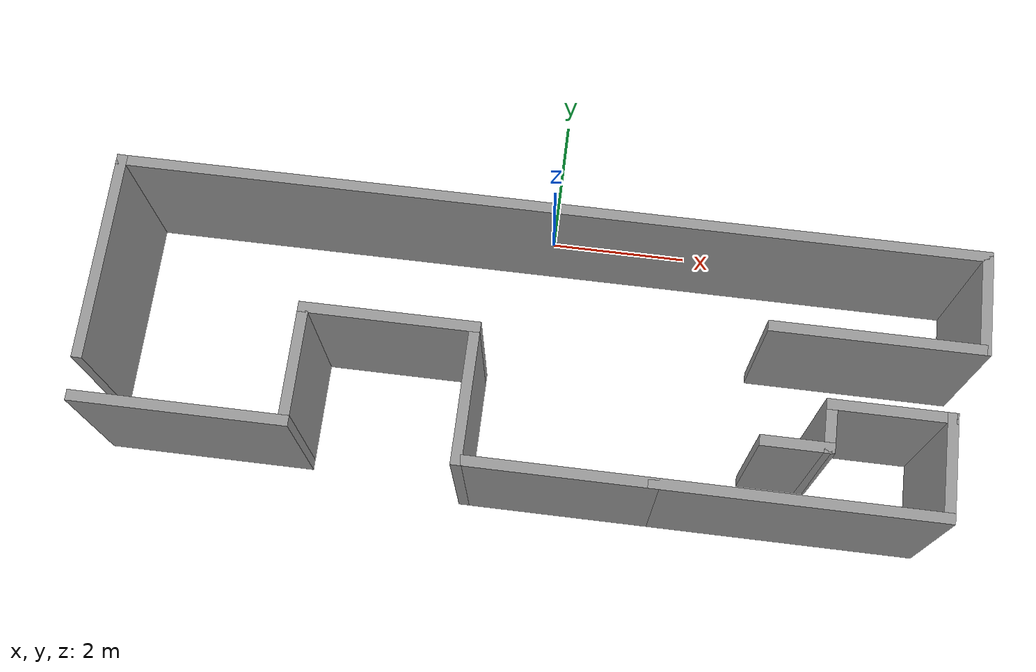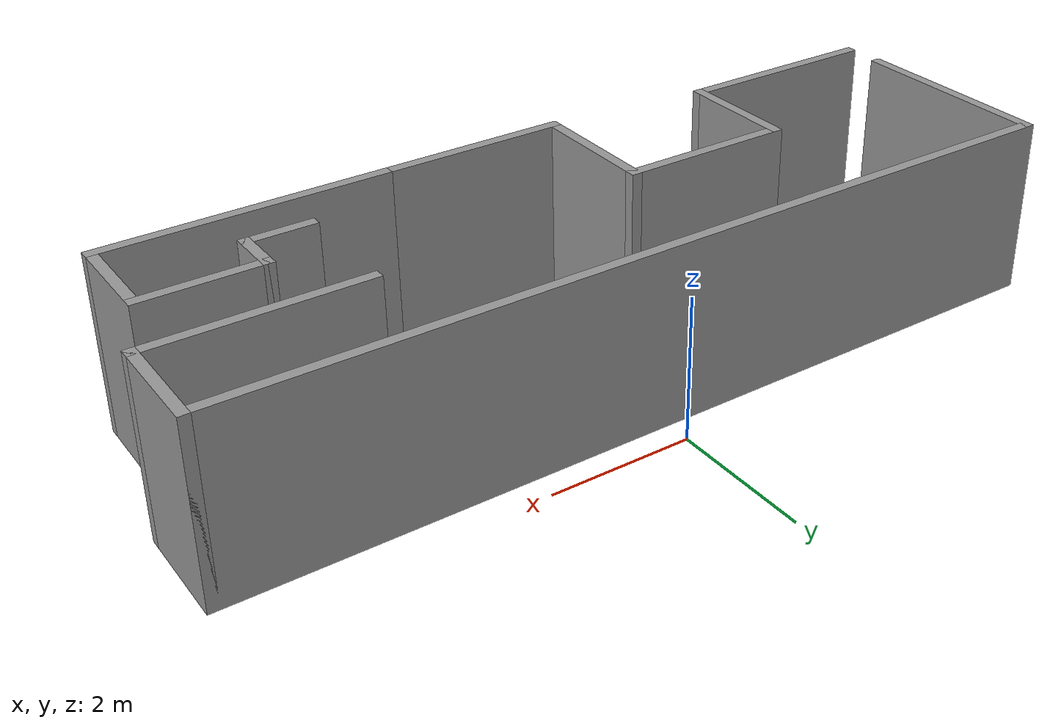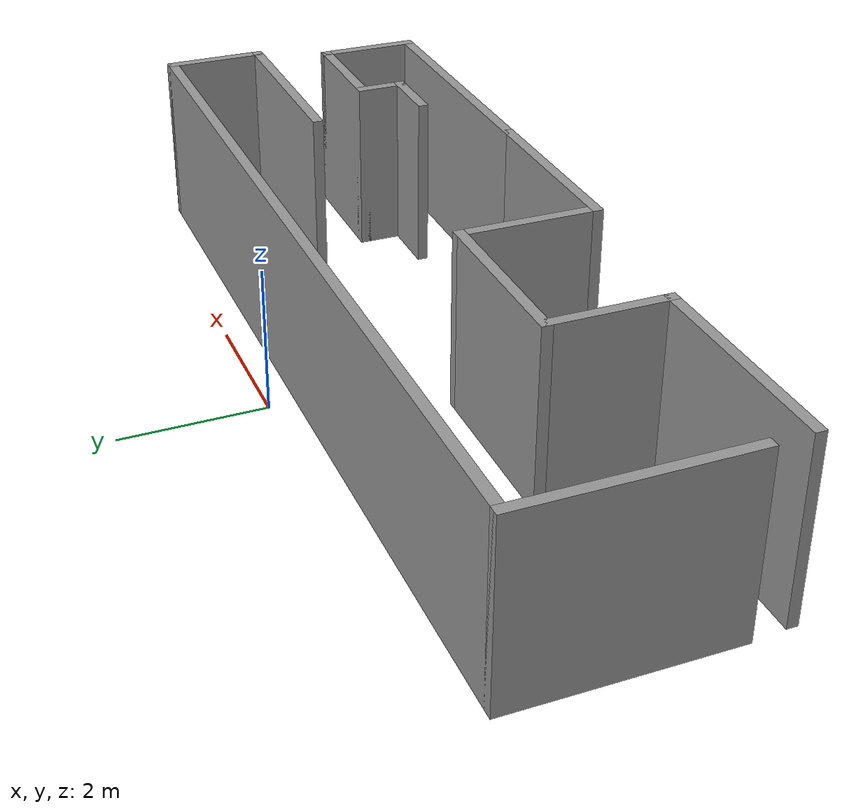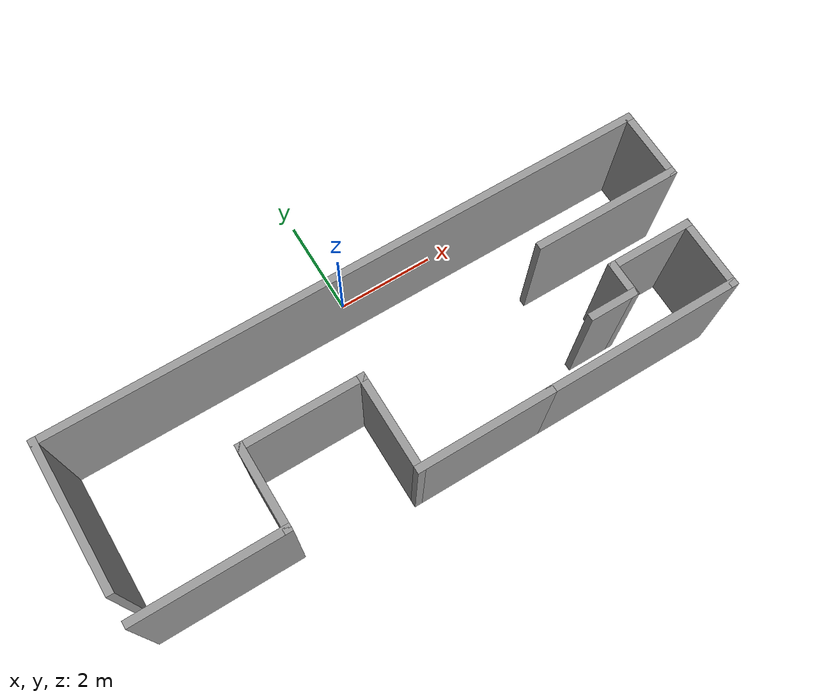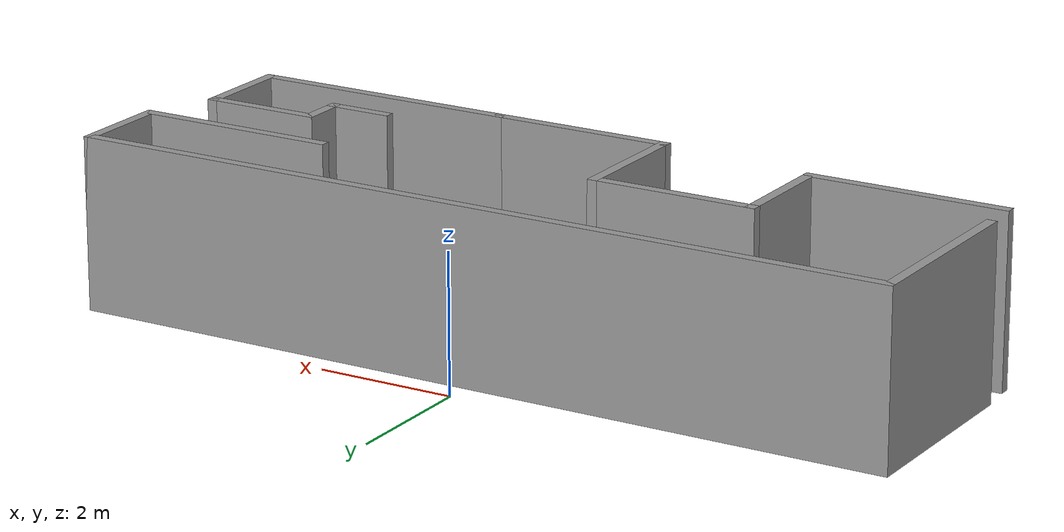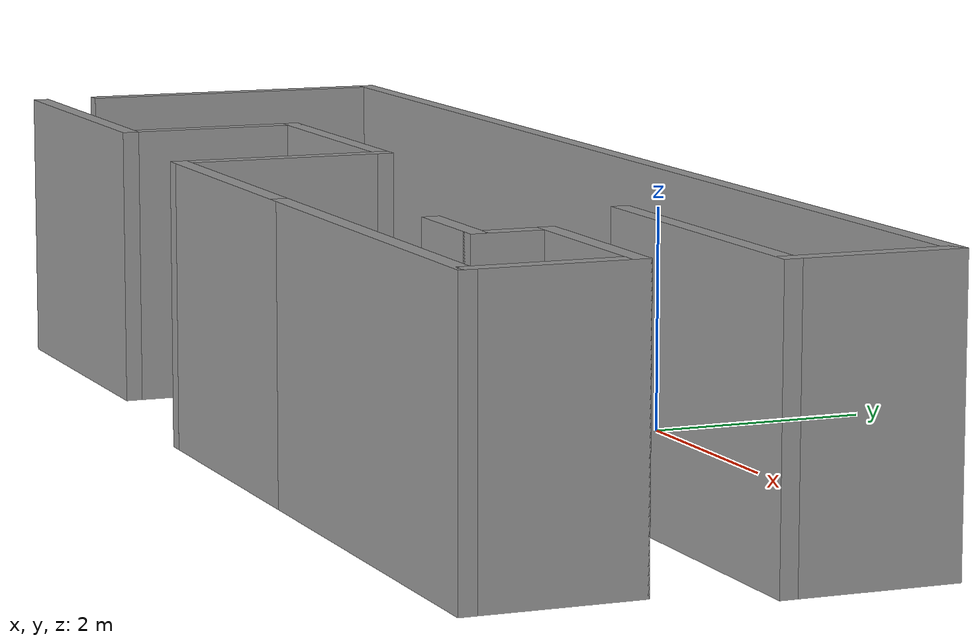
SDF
<sdf version='1.7'>
  <model name='model'>
    <pose>-0.03 -2.1075 0 0 -0 0</pose>
    <link name='Wall_0'>
      <collision name='Wall_0_Collision'>
        <geometry>
          <box>
            <size>3 0.15 2.5</size>
          </box>
        </geometry>
        <pose>0 0 1.25 0 -0 0</pose>
      </collision>
      <visual name='Wall_0_Visual'>
        <pose>0 0 1.25 0 -0 0</pose>
        <geometry>
          <box>
            <size>3 0.15 2.5</size>
          </box>
        </geometry>
        <material>
          <script>
            <uri>file://media/materials/scripts/gazebo.material</uri>
            <name>Gazebo/Grey</name>
          </script>
          <ambient>1 1 1 1</ambient>
        </material>
        <meta>
          <layer>0</layer>
        </meta>
      </visual>
      <pose>-6.05 0.2425 0 0 -0 1.5708</pose>
    </link>
    <link name='Wall_1'>
      <collision name='Wall_1_Collision'>
        <geometry>
          <box>
            <size>12.25 0.15 2.5</size>
          </box>
        </geometry>
        <pose>0 0 1.25 0 -0 0</pose>
      </collision>
      <visual name='Wall_1_Visual'>
        <pose>0 0 1.25 0 -0 0</pose>
        <geometry>
          <box>
            <size>12.25 0.15 2.5</size>
          </box>
        </geometry>
        <material>
          <script>
            <uri>file://media/materials/scripts/gazebo.material</uri>
            <name>Gazebo/Grey</name>
          </script>
          <ambient>1 1 1 1</ambient>
        </material>
        <meta>
          <layer>0</layer>
        </meta>
      </visual>
      <pose>-0 1.6675 0 0 -0 0</pose>
    </link>
    <link name='Wall_10'>
      <collision name='Wall_10_Collision'>
        <geometry>
          <box>
            <size>2.75 0.15 2.5</size>
          </box>
        </geometry>
        <pose>0 0 1.25 0 -0 0</pose>
      </collision>
      <visual name='Wall_10_Visual'>
        <pose>0 0 1.25 0 -0 0</pose>
        <geometry>
          <box>
            <size>2.75 0.15 2.5</size>
          </box>
        </geometry>
        <material>
          <script>
            <uri>file://media/materials/scripts/gazebo.material</uri>
            <name>Gazebo/Grey</name>
          </script>
          <ambient>1 1 1 1</ambient>
        </material>
        <meta>
          <layer>0</layer>
        </meta>
      </visual>
      <pose>0.5 -2.0325 0 0 -0 3.14159</pose>
    </link>
    <link name='Wall_11'>
      <collision name='Wall_11_Collision'>
        <geometry>
          <box>
            <size>2 0.15 2.5</size>
          </box>
        </geometry>
        <pose>0 0 1.25 0 -0 0</pose>
      </collision>
      <visual name='Wall_11_Visual'>
        <pose>0 0 1.25 0 -0 0</pose>
        <geometry>
          <box>
            <size>2 0.15 2.5</size>
          </box>
        </geometry>
        <material>
          <script>
            <uri>file://media/materials/scripts/gazebo.material</uri>
            <name>Gazebo/Grey</name>
          </script>
          <ambient>1 1 1 1</ambient>
        </material>
        <meta>
          <layer>0</layer>
        </meta>
      </visual>
      <pose>-0.8 -1.1075 0 0 -0 1.5708</pose>
    </link>
    <link name='Wall_12'>
      <collision name='Wall_12_Collision'>
        <geometry>
          <box>
            <size>2.5 0.15 2.5</size>
          </box>
        </geometry>
        <pose>0 0 1.25 0 -0 0</pose>
      </collision>
      <visual name='Wall_12_Visual'>
        <pose>0 0 1.25 0 -0 0</pose>
        <geometry>
          <box>
            <size>2.5 0.15 2.5</size>
          </box>
        </geometry>
        <material>
          <script>
            <uri>file://media/materials/scripts/gazebo.material</uri>
            <name>Gazebo/Grey</name>
          </script>
          <ambient>1 1 1 1</ambient>
        </material>
        <meta>
          <layer>0</layer>
        </meta>
      </visual>
      <pose>-1.975 -0.1825 0 0 -0 3.14159</pose>
    </link>
    <link name='Wall_13'>
      <collision name='Wall_13_Collision'>
        <geometry>
          <box>
            <size>1.75 0.15 2.5</size>
          </box>
        </geometry>
        <pose>0 0 1.25 0 -0 0</pose>
      </collision>
      <visual name='Wall_13_Visual'>
        <pose>0 0 1.25 0 -0 0</pose>
        <geometry>
          <box>
            <size>1.75 0.15 2.5</size>
          </box>
        </geometry>
        <material>
          <script>
            <uri>file://media/materials/scripts/gazebo.material</uri>
            <name>Gazebo/Grey</name>
          </script>
          <ambient>1 1 1 1</ambient>
        </material>
        <meta>
          <layer>0</layer>
        </meta>
      </visual>
      <pose>-3.15 -0.9825 0 0 -0 -1.5708</pose>
    </link>
    <link name='Wall_14'>
      <collision name='Wall_14_Collision'>
        <geometry>
          <box>
            <size>3 0.15 2.5</size>
          </box>
        </geometry>
        <pose>0 0 1.25 0 -0 0</pose>
      </collision>
      <visual name='Wall_14_Visual'>
        <pose>0 0 1.25 0 -0 0</pose>
        <geometry>
          <box>
            <size>3 0.15 2.5</size>
          </box>
        </geometry>
        <material>
          <script>
            <uri>file://media/materials/scripts/gazebo.material</uri>
            <name>Gazebo/Grey</name>
          </script>
          <ambient>1 1 1 1</ambient>
        </material>
        <meta>
          <layer>0</layer>
        </meta>
      </visual>
      <pose>-4.575 -1.7825 0 0 -0 3.14159</pose>
    </link>
    <link name='Wall_2'>
      <collision name='Wall_2_Collision'>
        <geometry>
          <box>
            <size>1.5 0.15 2.5</size>
          </box>
        </geometry>
        <pose>0 0 1.25 0 -0 0</pose>
      </collision>
      <visual name='Wall_2_Visual'>
        <pose>0 0 1.25 0 -0 0</pose>
        <geometry>
          <box>
            <size>1.5 0.15 2.5</size>
          </box>
        </geometry>
        <material>
          <script>
            <uri>file://media/materials/scripts/gazebo.material</uri>
            <name>Gazebo/Grey</name>
          </script>
          <ambient>1 1 1 1</ambient>
        </material>
        <meta>
          <layer>0</layer>
        </meta>
      </visual>
      <pose>6.05 0.9925 0 0 -0 -1.5708</pose>
    </link>
    <link name='Wall_3'>
      <collision name='Wall_3_Collision'>
        <geometry>
          <box>
            <size>3 0.15 2.5</size>
          </box>
        </geometry>
        <pose>0 0 1.25 0 -0 0</pose>
      </collision>
      <visual name='Wall_3_Visual'>
        <pose>0 0 1.25 0 -0 0</pose>
        <geometry>
          <box>
            <size>3 0.15 2.5</size>
          </box>
        </geometry>
        <material>
          <script>
            <uri>file://media/materials/scripts/gazebo.material</uri>
            <name>Gazebo/Grey</name>
          </script>
          <ambient>1 1 1 1</ambient>
        </material>
        <meta>
          <layer>0</layer>
        </meta>
      </visual>
      <pose>4.625 0.3175 0 0 -0 3.14159</pose>
    </link>
    <link name='Wall_5'>
      <collision name='Wall_5_Collision'>
        <geometry>
          <box>
            <size>1 0.15 2.5</size>
          </box>
        </geometry>
        <pose>0 0 1.25 0 -0 0</pose>
      </collision>
      <visual name='Wall_5_Visual'>
        <pose>0 0 1.25 0 -0 0</pose>
        <geometry>
          <box>
            <size>1 0.15 2.5</size>
          </box>
        </geometry>
        <material>
          <script>
            <uri>file://media/materials/scripts/gazebo.material</uri>
            <name>Gazebo/Grey</name>
          </script>
          <ambient>1 1 1 1</ambient>
        </material>
        <meta>
          <layer>0</layer>
        </meta>
      </visual>
      <pose>3.625 -1.2825 0 0 -0 0</pose>
    </link>
    <link name='Wall_6'>
      <collision name='Wall_6_Collision'>
        <geometry>
          <box>
            <size>0.75 0.15 2.5</size>
          </box>
        </geometry>
        <pose>0 0 1.25 0 -0 0</pose>
      </collision>
      <visual name='Wall_6_Visual'>
        <pose>0 0 1.25 0 -0 0</pose>
        <geometry>
          <box>
            <size>0.75 0.15 2.5</size>
          </box>
        </geometry>
        <material>
          <script>
            <uri>file://media/materials/scripts/gazebo.material</uri>
            <name>Gazebo/Grey</name>
          </script>
          <ambient>1 1 1 1</ambient>
        </material>
        <meta>
          <layer>0</layer>
        </meta>
      </visual>
      <pose>4.05 -0.9825 0 0 -0 1.5708</pose>
    </link>
    <link name='Wall_7'>
      <collision name='Wall_7_Collision'>
        <geometry>
          <box>
            <size>1.75 0.15 2.5</size>
          </box>
        </geometry>
        <pose>0 0 1.25 0 -0 0</pose>
      </collision>
      <visual name='Wall_7_Visual'>
        <pose>0 0 1.25 0 -0 0</pose>
        <geometry>
          <box>
            <size>1.75 0.15 2.5</size>
          </box>
        </geometry>
        <material>
          <script>
            <uri>file://media/materials/scripts/gazebo.material</uri>
            <name>Gazebo/Grey</name>
          </script>
          <ambient>1 1 1 1</ambient>
        </material>
        <meta>
          <layer>0</layer>
        </meta>
      </visual>
      <pose>4.85 -0.6825 0 0 -0 0</pose>
    </link>
    <link name='Wall_8'>
      <collision name='Wall_8_Collision'>
        <geometry>
          <box>
            <size>1.5 0.15 2.5</size>
          </box>
        </geometry>
        <pose>0 0 1.25 0 -0 0</pose>
      </collision>
      <visual name='Wall_8_Visual'>
        <pose>0 0 1.25 0 -0 0</pose>
        <geometry>
          <box>
            <size>1.5 0.15 2.5</size>
          </box>
        </geometry>
        <material>
          <script>
            <uri>file://media/materials/scripts/gazebo.material</uri>
            <name>Gazebo/Grey</name>
          </script>
          <ambient>1 1 1 1</ambient>
        </material>
        <meta>
          <layer>0</layer>
        </meta>
      </visual>
      <pose>5.65 -1.3575 0 0 -0 -1.5708</pose>
    </link>
    <link name='Wall_9'>
      <collision name='Wall_9_Collision'>
        <geometry>
          <box>
            <size>4 0.15 2.5</size>
          </box>
        </geometry>
        <pose>0 0 1.25 0 -0 0</pose>
      </collision>
      <visual name='Wall_9_Visual'>
        <pose>0 0 1.25 0 -0 0</pose>
        <geometry>
          <box>
            <size>4 0.15 2.5</size>
          </box>
        </geometry>
        <material>
          <script>
            <uri>file://media/materials/scripts/gazebo.material</uri>
            <name>Gazebo/Grey</name>
          </script>
          <ambient>1 1 1 1</ambient>
        </material>
        <meta>
          <layer>0</layer>
        </meta>
      </visual>
      <pose>3.725 -2.0325 0 0 -0 3.14159</pose>
    </link>
    <static>1</static>
  </model>
</sdf>
